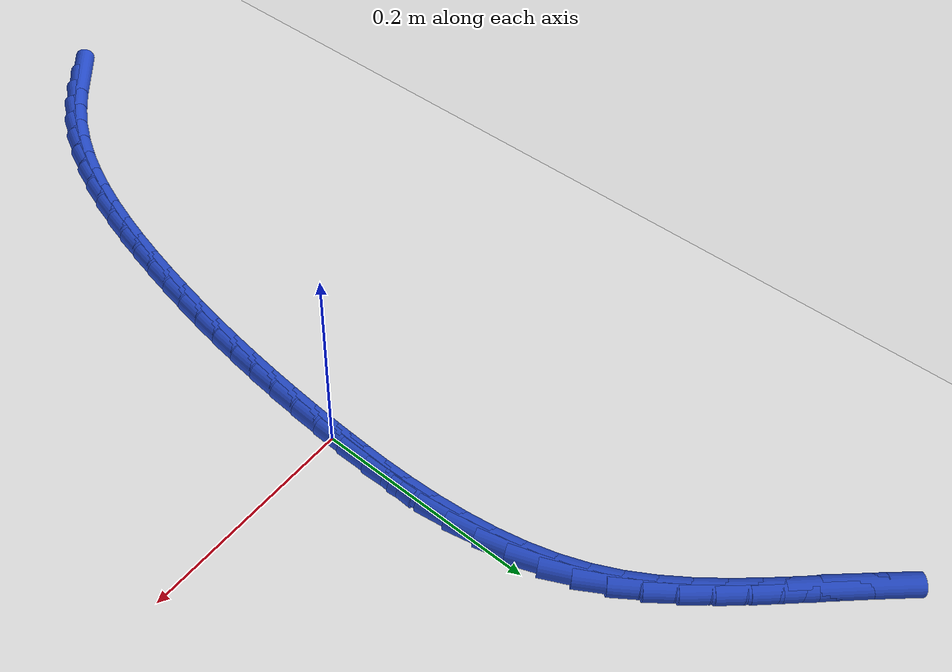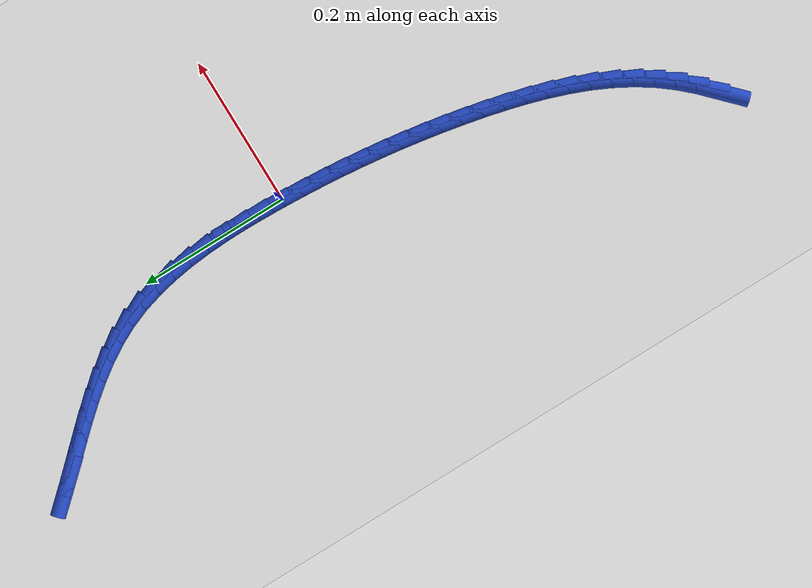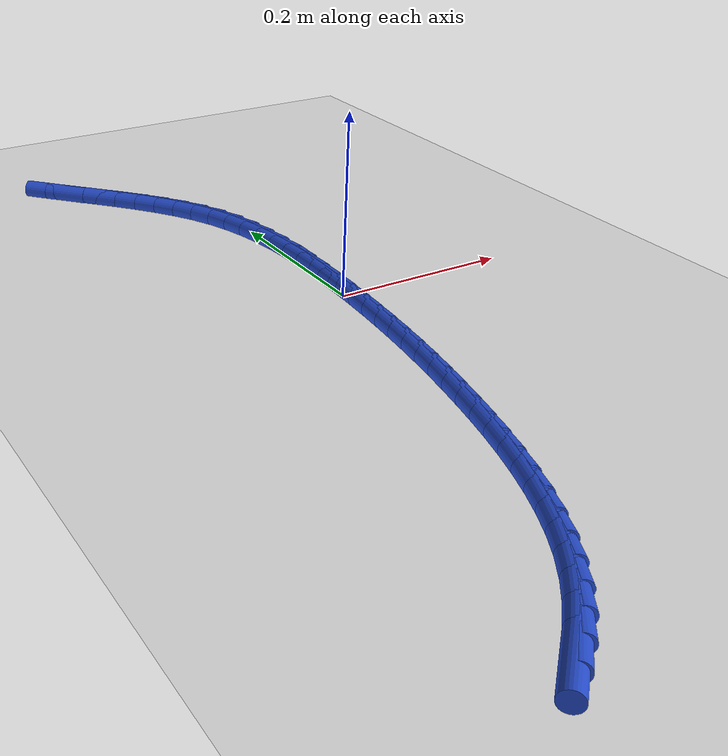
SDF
<sdf version="1.6">
 <world name="default">
  <model name="ground_plane">
   <static>1</static>
   <link name="link">
    <collision name="collision">
     <geometry><plane><normal>0 0 1</normal><size>100 100</size></plane></geometry>
     <surface><friction><ode><mu>100</mu><mu2>50</mu2></ode></friction></surface>
    </collision>
    <visual name="visual">
     <cast_shadows>0</cast_shadows>
     <geometry><plane><normal>0 0 1</normal><size>100 100</size></plane></geometry>
     <material>
      <script><uri>file://media/materials/scripts/gazebo.material</uri><name>Gazebo/WhiteGlow</name></script>
     </material>
    </visual>
   </link>
  </model>
  <model name="line">
   <link name="link_0">
    <pose>5.44811591673966e-18 -4.85722573273506e-17 0.01 0 1.57 1.52936281463359</pose>
    <collision name="collision">
     <geometry><cylinder><radius>0.01</radius><length>0.08</length></cylinder></geometry>
    </collision>
    <visual name="visual">
     <material>
      <script><name>Gazebo/Blue</name><uri>file://media/materials/scripts/gazebo.material</uri></script>
     </material>
     <geometry><cylinder><radius>0.01</radius><length>0.08</length></cylinder></geometry>
    </visual>
   </link>
   <link name="link_1">
    <pose>0.0011541633781692302 0.02783985179669101 0.01 0 1.57 1.5510333189672778</pose>
    <collision name="collision">
     <geometry><cylinder><radius>0.01</radius><length>0.08</length></cylinder></geometry>
    </collision>
    <visual name="visual">
     <material>
      <script><name>Gazebo/Blue</name><uri>file://media/materials/scripts/gazebo.material</uri></script>
     </material>
     <geometry><cylinder><radius>0.01</radius><length>0.08</length></cylinder></geometry>
    </visual>
   </link>
   <link name="link_2">
    <pose>0.0017077863925077724 0.05584929954443413 0.01 0 1.57 -1.5615755259988313</pose>
    <collision name="collision">
     <geometry><cylinder><radius>0.01</radius><length>0.08</length></cylinder></geometry>
    </collision>
    <visual name="visual">
     <material>
      <script><name>Gazebo/Blue</name><uri>file://media/materials/scripts/gazebo.material</uri></script>
     </material>
     <geometry><cylinder><radius>0.01</radius><length>0.08</length></cylinder></geometry>
    </visual>
   </link>
   <link name="link_3">
    <pose>0.0014494072117952558 0.08386984392518775 0.01 0 1.57 -1.5248402342841438</pose>
    <collision name="collision">
     <geometry><cylinder><radius>0.01</radius><length>0.08</length></cylinder></geometry>
    </collision>
    <visual name="visual">
     <material>
      <script><name>Gazebo/Blue</name><uri>file://media/materials/scripts/gazebo.material</uri></script>
     </material>
     <geometry><cylinder><radius>0.01</radius><length>0.08</length></cylinder></geometry>
    </visual>
   </link>
   <link name="link_4">
    <pose>0.00016756400481130742 0.11174298562091044 0.01 0 1.57 -1.4797530624721642</pose>
    <collision name="collision">
     <geometry><cylinder><radius>0.01</radius><length>0.08</length></cylinder></geometry>
    </collision>
    <visual name="visual">
     <material>
      <script><name>Gazebo/Blue</name><uri>file://media/materials/scripts/gazebo.material</uri></script>
     </material>
     <geometry><cylinder><radius>0.01</radius><length>0.08</length></cylinder></geometry>
    </visual>
   </link>
   <link name="link_5">
    <pose>-0.0023492050596644453 0.13931022531356066 0.01 0 1.57 -1.425598742480633</pose>
    <collision name="collision">
     <geometry><cylinder><radius>0.01</radius><length>0.08</length></cylinder></geometry>
    </collision>
    <visual name="visual">
     <material>
      <script><name>Gazebo/Blue</name><uri>file://media/materials/scripts/gazebo.material</uri></script>
     </material>
     <geometry><cylinder><radius>0.01</radius><length>0.08</length></cylinder></geometry>
    </visual>
   </link>
   <link name="link_6">
    <pose>-0.006312361812852373 0.16641306368509692 0.01 0 1.57 -1.361627035891638</pose>
    <collision name="collision">
     <geometry><cylinder><radius>0.01</radius><length>0.08</length></cylinder></geometry>
    </collision>
    <visual name="visual">
     <material>
      <script><name>Gazebo/Blue</name><uri>file://media/materials/scripts/gazebo.material</uri></script>
     </material>
     <geometry><cylinder><radius>0.01</radius><length>0.08</length></cylinder></geometry>
    </visual>
   </link>
   <link name="link_7">
    <pose>-0.011933368085972852 0.1928930014174778 0.01 0 1.57 -1.2871847369622496</pose>
    <collision name="collision">
     <geometry><cylinder><radius>0.01</radius><length>0.08</length></cylinder></geometry>
    </collision>
    <visual name="visual">
     <material>
      <script><name>Gazebo/Blue</name><uri>file://media/materials/scripts/gazebo.material</uri></script>
     </material>
     <geometry><cylinder><radius>0.01</radius><length>0.08</length></cylinder></geometry>
    </visual>
   </link>
   <link name="link_8">
    <pose>-0.01942368571024626 0.21859153919266186 0.01 0 1.57 -1.2019158198015052</pose>
    <collision name="collision">
     <geometry><cylinder><radius>0.01</radius><length>0.08</length></cylinder></geometry>
    </collision>
    <visual name="visual">
     <material>
      <script><name>Gazebo/Blue</name><uri>file://media/materials/scripts/gazebo.material</uri></script>
     </material>
     <geometry><cylinder><radius>0.01</radius><length>0.08</length></cylinder></geometry>
    </visual>
   </link>
   <link name="link_9">
    <pose>-0.028994776516892966 0.2433501776926075 0.01 0 1.57 -1.107951390770927</pose>
    <collision name="collision">
     <geometry><cylinder><radius>0.01</radius><length>0.08</length></cylinder></geometry>
    </collision>
    <visual name="visual">
     <material>
      <script><name>Gazebo/Blue</name><uri>file://media/materials/scripts/gazebo.material</uri></script>
     </material>
     <geometry><cylinder><radius>0.01</radius><length>0.08</length></cylinder></geometry>
    </visual>
   </link>
   <link name="link_10">
    <pose>-0.04081411634225851 0.2670363689495163 0.01 0 1.57 -1.0215255866779043</pose>
    <collision name="collision">
     <geometry><cylinder><radius>0.01</radius><length>0.08</length></cylinder></geometry>
    </collision>
    <visual name="visual">
     <material>
      <script><name>Gazebo/Blue</name><uri>file://media/materials/scripts/gazebo.material</uri></script>
     </material>
     <geometry><cylinder><radius>0.01</radius><length>0.08</length></cylinder></geometry>
    </visual>
   </link>
   <link name="link_11">
    <pose>-0.054700741327095063 0.2897231413524448 0.01 0 1.57 -0.9507243869292543</pose>
    <collision name="collision">
     <geometry><cylinder><radius>0.01</radius><length>0.08</length></cylinder></geometry>
    </collision>
    <visual name="visual">
     <material>
      <script><name>Gazebo/Blue</name><uri>file://media/materials/scripts/gazebo.material</uri></script>
     </material>
     <geometry><cylinder><radius>0.01</radius><length>0.08</length></cylinder></geometry>
    </visual>
   </link>
   <link name="link_12">
    <pose>-0.07030788435505346 0.31158134575436575 0.01 0 1.57 -0.8955087621850788</pose>
    <collision name="collision">
     <geometry><cylinder><radius>0.01</radius><length>0.08</length></cylinder></geometry>
    </collision>
    <visual name="visual">
     <material>
      <script><name>Gazebo/Blue</name><uri>file://media/materials/scripts/gazebo.material</uri></script>
     </material>
     <geometry><cylinder><radius>0.01</radius><length>0.08</length></cylinder></geometry>
    </visual>
   </link>
   <link name="link_13">
    <pose>-0.08728776614763331 0.33278243017502257 0.01 0 1.57 -0.855288107946799</pose>
    <collision name="collision">
     <geometry><cylinder><radius>0.01</radius><length>0.08</length></cylinder></geometry>
    </collision>
    <visual name="visual">
     <material>
      <script><name>Gazebo/Blue</name><uri>file://media/materials/scripts/gazebo.material</uri></script>
     </material>
     <geometry><cylinder><radius>0.01</radius><length>0.08</length></cylinder></geometry>
    </visual>
   </link>
   <link name="link_14">
    <pose>-0.10529260742633428 0.3534978426341587 0.01 0 1.57 -0.8293571810454904</pose>
    <collision name="collision">
     <geometry><cylinder><radius>0.01</radius><length>0.08</length></cylinder></geometry>
    </collision>
    <visual name="visual">
     <material>
      <script><name>Gazebo/Blue</name><uri>file://media/materials/scripts/gazebo.material</uri></script>
     </material>
     <geometry><cylinder><radius>0.01</radius><length>0.08</length></cylinder></geometry>
    </visual>
   </link>
   <link name="link_15">
    <pose>-0.12397462891265597 0.37389903115151724 0.01 0 1.57 -0.8171419000854817</pose>
    <collision name="collision">
     <geometry><cylinder><radius>0.01</radius><length>0.08</length></cylinder></geometry>
    </collision>
    <visual name="visual">
     <material>
      <script><name>Gazebo/Blue</name><uri>file://media/materials/scripts/gazebo.material</uri></script>
     </material>
     <geometry><cylinder><radius>0.01</radius><length>0.08</length></cylinder></geometry>
    </visual>
   </link>
   <link name="link_16">
    <pose>-0.14298605132809802 0.39415744374684153 0.01 0 1.57 -0.8183301529669745</pose>
    <collision name="collision">
     <geometry><cylinder><radius>0.01</radius><length>0.08</length></cylinder></geometry>
    </collision>
    <visual name="visual">
     <material>
      <script><name>Gazebo/Blue</name><uri>file://media/materials/scripts/gazebo.material</uri></script>
     </material>
     <geometry><cylinder><radius>0.01</radius><length>0.08</length></cylinder></geometry>
    </visual>
   </link>
   <link name="link_17">
    <pose>-0.16197909539416017 0.414444528439875 0.01 0 1.57 -0.8329236838366222</pose>
    <collision name="collision">
     <geometry><cylinder><radius>0.01</radius><length>0.08</length></cylinder></geometry>
    </collision>
    <visual name="visual">
     <material>
      <script><name>Gazebo/Blue</name><uri>file://media/materials/scripts/gazebo.material</uri></script>
     </material>
     <geometry><cylinder><radius>0.01</radius><length>0.08</length></cylinder></geometry>
    </visual>
   </link>
   <link name="link_229">
    <pose>-0.17014114069978958 -0.5312128399787522 0.01 0 1.57 0.7646283006576364</pose>
    <collision name="collision">
     <geometry><cylinder><radius>0.01</radius><length>0.08</length></cylinder></geometry>
    </collision>
    <visual name="visual">
     <material>
      <script><name>Gazebo/Blue</name><uri>file://media/materials/scripts/gazebo.material</uri></script>
     </material>
     <geometry><cylinder><radius>0.01</radius><length>0.08</length></cylinder></geometry>
    </visual>
   </link>
   <link name="link_230">
    <pose>-0.15090419396836183 -0.5127588415918352 0.01 0 1.57 0.8290791662745376</pose>
    <collision name="collision">
     <geometry><cylinder><radius>0.01</radius><length>0.08</length></cylinder></geometry>
    </collision>
    <visual name="visual">
     <material>
      <script><name>Gazebo/Blue</name><uri>file://media/materials/scripts/gazebo.material</uri></script>
     </material>
     <geometry><cylinder><radius>0.01</radius><length>0.08</length></cylinder></geometry>
    </visual>
   </link>
   <link name="link_231">
    <pose>-0.13299437006958262 -0.4932118238829051 0.01 0 1.57 0.9077124446858835</pose>
    <collision name="collision">
     <geometry><cylinder><radius>0.01</radius><length>0.08</length></cylinder></geometry>
    </collision>
    <visual name="visual">
     <material>
      <script><name>Gazebo/Blue</name><uri>file://media/materials/scripts/gazebo.material</uri></script>
     </material>
     <geometry><cylinder><radius>0.01</radius><length>0.08</length></cylinder></geometry>
    </visual>
   </link>
   <link name="link_232">
    <pose>-0.11667909957904422 -0.47232314961342753 0.01 0 1.57 0.9898066077807877</pose>
    <collision name="collision">
     <geometry><cylinder><radius>0.01</radius><length>0.08</length></cylinder></geometry>
    </collision>
    <visual name="visual">
     <material>
      <script><name>Gazebo/Blue</name><uri>file://media/materials/scripts/gazebo.material</uri></script>
     </material>
     <geometry><cylinder><radius>0.01</radius><length>0.08</length></cylinder></geometry>
    </visual>
   </link>
   <link name="link_233">
    <pose>-0.10204649645161222 -0.45003718934142134 0.01 0 1.57 1.0634970175426988</pose>
    <collision name="collision">
     <geometry><cylinder><radius>0.01</radius><length>0.08</length></cylinder></geometry>
    </collision>
    <visual name="visual">
     <material>
      <script><name>Gazebo/Blue</name><uri>file://media/materials/scripts/gazebo.material</uri></script>
     </material>
     <geometry><cylinder><radius>0.01</radius><length>0.08</length></cylinder></geometry>
    </visual>
   </link>
   <link name="link_234">
    <pose>-0.08897652195852943 -0.42652235917433573 0.01 0 1.57 1.1282863509142569</pose>
    <collision name="collision">
     <geometry><cylinder><radius>0.01</radius><length>0.08</length></cylinder></geometry>
    </collision>
    <visual name="visual">
     <material>
      <script><name>Gazebo/Blue</name><uri>file://media/materials/scripts/gazebo.material</uri></script>
     </material>
     <geometry><cylinder><radius>0.01</radius><length>0.08</length></cylinder></geometry>
    </visual>
   </link>
   <link name="link_235">
    <pose>-0.07733746582822061 -0.4019596379076329 0.01 0 1.57 1.1846079084773498</pose>
    <collision name="collision">
     <geometry><cylinder><radius>0.01</radius><length>0.08</length></cylinder></geometry>
    </collision>
    <visual name="visual">
     <material>
      <script><name>Gazebo/Blue</name><uri>file://media/materials/scripts/gazebo.material</uri></script>
     </material>
     <geometry><cylinder><radius>0.01</radius><length>0.08</length></cylinder></geometry>
    </visual>
   </link>
   <link name="link_236">
    <pose>-0.06699761778911065 -0.3765300043367749 0.01 0 1.57 1.23303367241209</pose>
    <collision name="collision">
     <geometry><cylinder><radius>0.01</radius><length>0.08</length></cylinder></geometry>
    </collision>
    <visual name="visual">
     <material>
      <script><name>Gazebo/Blue</name><uri>file://media/materials/scripts/gazebo.material</uri></script>
     </material>
     <geometry><cylinder><radius>0.01</radius><length>0.08</length></cylinder></geometry>
    </visual>
   </link>
   <link name="link_237">
    <pose>-0.057825267569624327 -0.35041443725722365 0.01 0 1.57 1.2741641339578262</pose>
    <collision name="collision">
     <geometry><cylinder><radius>0.01</radius><length>0.08</length></cylinder></geometry>
    </collision>
    <visual name="visual">
     <material>
      <script><name>Gazebo/Blue</name><uri>file://media/materials/scripts/gazebo.material</uri></script>
     </material>
     <geometry><cylinder><radius>0.01</radius><length>0.08</length></cylinder></geometry>
    </visual>
   </link>
   <link name="link_238">
    <pose>-0.04968870489818649 -0.3237939154644414 0.01 0 1.57 1.3085562215995432</pose>
    <collision name="collision">
     <geometry><cylinder><radius>0.01</radius><length>0.08</length></cylinder></geometry>
    </collision>
    <visual name="visual">
     <material>
      <script><name>Gazebo/Blue</name><uri>file://media/materials/scripts/gazebo.material</uri></script>
     </material>
     <geometry><cylinder><radius>0.01</radius><length>0.08</length></cylinder></geometry>
    </visual>
   </link>
   <link name="link_239">
    <pose>-0.04245621950322191 -0.2968494177538901 0.01 0 1.57 1.336678835829487</pose>
    <collision name="collision">
     <geometry><cylinder><radius>0.01</radius><length>0.08</length></cylinder></geometry>
    </collision>
    <visual name="visual">
     <material>
      <script><name>Gazebo/Blue</name><uri>file://media/materials/scripts/gazebo.material</uri></script>
     </material>
     <geometry><cylinder><radius>0.01</radius><length>0.08</length></cylinder></geometry>
    </visual>
   </link>
   <link name="link_240">
    <pose>-0.03599610111315562 -0.2697619229210327 0.01 0 1.57 1.3588959531039226</pose>
    <collision name="collision">
     <geometry><cylinder><radius>0.01</radius><length>0.08</length></cylinder></geometry>
    </collision>
    <visual name="visual">
     <material>
      <script><name>Gazebo/Blue</name><uri>file://media/materials/scripts/gazebo.material</uri></script>
     </material>
     <geometry><cylinder><radius>0.01</radius><length>0.08</length></cylinder></geometry>
    </visual>
   </link>
   <link name="link_241">
    <pose>-0.0301768485859767 -0.24271198270622943 0.01 0 1.57 1.3771467971350675</pose>
    <collision name="collision">
     <geometry><cylinder><radius>0.01</radius><length>0.08</length></cylinder></geometry>
    </collision>
    <visual name="visual">
     <material>
      <script><name>Gazebo/Blue</name><uri>file://media/materials/scripts/gazebo.material</uri></script>
     </material>
     <geometry><cylinder><radius>0.01</radius><length>0.08</length></cylinder></geometry>
    </visual>
   </link>
   <link name="link_242">
    <pose>-0.024901218495132507 -0.21581019254244752 0.01 0 1.57 1.395052810405243</pose>
    <collision name="collision">
     <geometry><cylinder><radius>0.01</radius><length>0.08</length></cylinder></geometry>
    </collision>
    <visual name="visual">
     <material>
      <script><name>Gazebo/Blue</name><uri>file://media/materials/scripts/gazebo.material</uri></script>
     </material>
     <geometry><cylinder><radius>0.01</radius><length>0.08</length></cylinder></geometry>
    </visual>
   </link>
   <link name="link_243">
    <pose>-0.020143960860728026 -0.18902013293134362 0.01 0 1.57 1.4129538664297983</pose>
    <collision name="collision">
     <geometry><cylinder><radius>0.01</radius><length>0.08</length></cylinder></geometry>
    </collision>
    <visual name="visual">
     <material>
      <script><name>Gazebo/Blue</name><uri>file://media/materials/scripts/gazebo.material</uri></script>
     </material>
     <geometry><cylinder><radius>0.01</radius><length>0.08</length></cylinder></geometry>
    </visual>
   </link>
   <link name="link_244">
    <pose>-0.01588891394228459 -0.16228682564519628 0.01 0 1.57 1.4307251807943764</pose>
    <collision name="collision">
     <geometry><cylinder><radius>0.01</radius><length>0.08</length></cylinder></geometry>
    </collision>
    <visual name="visual">
     <material>
      <script><name>Gazebo/Blue</name><uri>file://media/materials/scripts/gazebo.material</uri></script>
     </material>
     <geometry><cylinder><radius>0.01</radius><length>0.08</length></cylinder></geometry>
    </visual>
   </link>
   <link name="link_245">
    <pose>-0.012119915999323517 -0.13555529245628412 0.01 0 1.57 1.4482423094442414</pose>
    <collision name="collision">
     <geometry><cylinder><radius>0.01</radius><length>0.08</length></cylinder></geometry>
    </collision>
    <visual name="visual">
     <material>
      <script><name>Gazebo/Blue</name><uri>file://media/materials/scripts/gazebo.material</uri></script>
     </material>
     <geometry><cylinder><radius>0.01</radius><length>0.08</length></cylinder></geometry>
    </visual>
   </link>
   <link name="link_246">
    <pose>-0.00882080529136613 -0.10877055513688562 0.01 0 1.57 1.4653842553208691</pose>
    <collision name="collision">
     <geometry><cylinder><radius>0.01</radius><length>0.08</length></cylinder></geometry>
    </collision>
    <visual name="visual">
     <material>
      <script><name>Gazebo/Blue</name><uri>file://media/materials/scripts/gazebo.material</uri></script>
     </material>
     <geometry><cylinder><radius>0.01</radius><length>0.08</length></cylinder></geometry>
    </visual>
   </link>
   <link name="link_247">
    <pose>-0.0059754200779337605 -0.08187763545927941 0.01 0 1.57 1.4820364282152994</pose>
    <collision name="collision">
     <geometry><cylinder><radius>0.01</radius><length>0.08</length></cylinder></geometry>
    </collision>
    <visual name="visual">
     <material>
      <script><name>Gazebo/Blue</name><uri>file://media/materials/scripts/gazebo.material</uri></script>
     </material>
     <geometry><cylinder><radius>0.01</radius><length>0.08</length></cylinder></geometry>
    </visual>
   </link>
   <link name="link_248">
    <pose>-0.0035675986185477286 -0.05482155519574397 0.01 0 1.57 1.4980932985691138</pose>
    <collision name="collision">
     <geometry><cylinder><radius>0.01</radius><length>0.08</length></cylinder></geometry>
    </collision>
    <visual name="visual">
     <material>
      <script><name>Gazebo/Blue</name><uri>file://media/materials/scripts/gazebo.material</uri></script>
     </material>
     <geometry><cylinder><radius>0.01</radius><length>0.08</length></cylinder></geometry>
    </visual>
   </link>
   <link name="link_249">
    <pose>-0.00158117917272936 -0.027547336118557926 0.01 0 1.57 1.5134606142447578</pose>
    <collision name="collision">
     <geometry><cylinder><radius>0.01</radius><length>0.08</length></cylinder></geometry>
    </collision>
    <visual name="visual">
     <material>
      <script><name>Gazebo/Blue</name><uri>file://media/materials/scripts/gazebo.material</uri></script>
     </material>
     <geometry><cylinder><radius>0.01</radius><length>0.08</length></cylinder></geometry>
    </visual>
   </link>
   <link name="link_250">
    <pose>2.0247475571166795e-17 1.942890293094024e-16 0.01 0 1.57 1.5280570885058868</pose>
    <collision name="collision">
     <geometry><cylinder><radius>0.01</radius><length>0.08</length></cylinder></geometry>
    </collision>
    <visual name="visual">
     <material>
      <script><name>Gazebo/Blue</name><uri>file://media/materials/scripts/gazebo.material</uri></script>
     </material>
     <geometry><cylinder><radius>0.01</radius><length>0.08</length></cylinder></geometry>
    </visual>
   </link>
   <link name="link_251">
    <pose>0.001192100640119086 0.027875431387651792 0.01 0 1.57 1.5418155120737371</pose>
    <collision name="collision">
     <geometry><cylinder><radius>0.01</radius><length>0.08</length></cylinder></geometry>
    </collision>
    <visual name="visual">
     <material>
      <script><name>Gazebo/Blue</name><uri>file://media/materials/scripts/gazebo.material</uri></script>
     </material>
     <geometry><cylinder><radius>0.01</radius><length>0.08</length></cylinder></geometry>
    </visual>
   </link>
   <link name="link_252">
    <pose>0.0020112844881065147 0.056133936272118365 0.01 0 1.57 1.534981548943919</pose>
    <collision name="collision">
     <geometry><cylinder><radius>0.01</radius><length>0.08</length></cylinder></geometry>
    </collision>
    <visual name="visual">
     <material>
      <script><name>Gazebo/Blue</name><uri>file://media/materials/scripts/gazebo.material</uri></script>
     </material>
     <geometry><cylinder><radius>0.01</radius><length>0.08</length></cylinder></geometry>
    </visual>
   </link>
  </model>
 </world>
</sdf>
